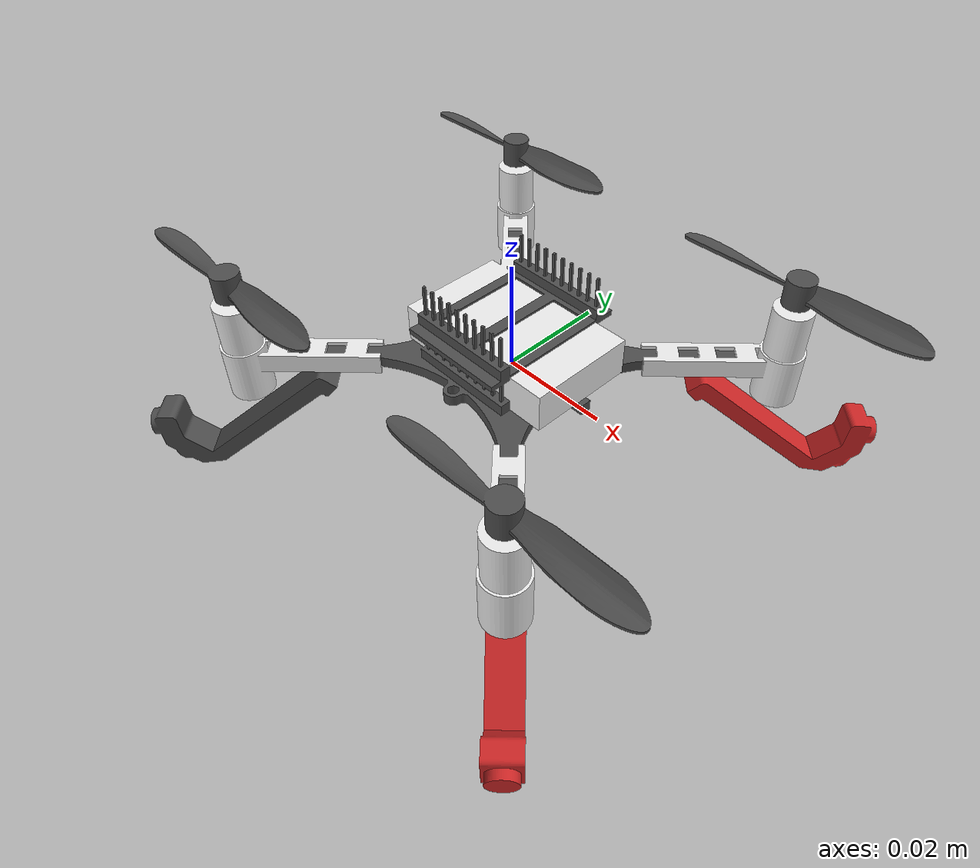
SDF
<?xml version='1.0'?>
<sdf version='1.7'>
  <model name='A50_L80'>

    <include>
      <uri>model://SAR_Base</uri>
    </include>

    <link name='Leg_1'>
      <pose>23.8e-3 -23.8e-3 -1.6e-3 0 0.698132 -0.785</pose>
      <inertial>
        <mass>3.66E-3</mass>
        <pose>5.83E-2 0 2.10E-4 0 0 0 </pose>
        <inertia>
          <ixx>4.44E-8</ixx>
          <ixy>0</ixy>
          <ixz>2.09E-7</ixz>
          <iyy>3.64E-6</iyy>
          <iyz>0</iyz>
          <izz>3.61E-6</izz>
        </inertia>
      </inertial>
      <gravity>1</gravity>
      <self_collide>1</self_collide>
      <visual name='Leg_Visual'>
        <pose>0 0 0 0 0 0</pose>
        <geometry>
          <mesh>
            <uri>model://Leg_Assemblies/meshes/Leg_Assembly_50_deg--80mm--Crazyflie.STL</uri>
            <scale>1 1 1</scale>
          </mesh>
        </geometry>
        <material>
          <script>
            <name>Gazebo/Red </name>
            <uri>file://media/materials/scripts/gazebo.material</uri>
          </script>
          <lighting>1</lighting>
        </material>
      </visual>
      <collision name="Leg_Collision_1">
        <pose>83.6e-3 0 4.3e-3 0 0 0</pose>
        <geometry>
          <sphere>
            <radius>6.5e-3</radius>
          </sphere>
        </geometry>
      </collision>
      <sensor name="Contact_Sensor" type="contact">
        <update_rate>100.0</update_rate>
        <contact>
          <collision>Leg_Collision_1</collision>
        </contact>
      </sensor>
      <self_collide>1</self_collide>
    </link>

    <link name='Leg_2'>
      <pose>-23.8e-3 -23.8e-3 -1.6e-3 0 0.698132 -2.35</pose>
      <inertial>
        <mass>3.66E-3</mass>
        <pose>5.83E-2 0 2.10E-4 0 0 0 </pose>
        <inertia>
          <ixx>4.44E-8</ixx>
          <ixy>0</ixy>
          <ixz>2.09E-7</ixz>
          <iyy>3.64E-6</iyy>
          <iyz>0</iyz>
          <izz>3.61E-6</izz>
        </inertia>
      </inertial>
      <gravity>1</gravity>
      <self_collide>1</self_collide>
      <visual name='Leg_Visual'>
        <pose>0 0 0 0 0 0</pose>
        <geometry>
          <mesh>
            <uri>model://Leg_Assemblies/meshes/Leg_Assembly_50_deg--80mm--Crazyflie.STL</uri>
            <scale>1 1 1</scale>
          </mesh>
        </geometry>
        <material>
          <script>
            <name>Gazebo/DarkGrey </name>
            <uri>file://media/materials/scripts/gazebo.material</uri>
          </script>
          <lighting>1</lighting>
        </material>
      </visual>
      <collision name="Leg_Collision_2">
        <pose>83.6e-3 0 4.3e-3 0 0 0</pose>
        <geometry>
          <sphere>
            <radius>6.5e-3</radius>
          </sphere>
        </geometry>
      </collision>
      <sensor name="Contact_Sensor" type="contact">
        <update_rate>100.0</update_rate>
        <contact>
          <collision>Leg_Collision_2</collision>
        </contact>
      </sensor>
      <self_collide>1</self_collide>
    </link>

    <link name='Leg_3'>
      <pose>-23.8e-3 23.8e-3 -1.6e-3 0 0.698132 2.35</pose>
      <inertial>
        <mass>3.66E-3</mass>
        <pose>5.83E-2 0 2.10E-4 0 0 0 </pose>
        <inertia>
          <ixx>4.44E-8</ixx>
          <ixy>0</ixy>
          <ixz>2.09E-7</ixz>
          <iyy>3.64E-6</iyy>
          <iyz>0</iyz>
          <izz>3.61E-6</izz>
        </inertia>
      </inertial>
      <gravity>1</gravity>
      <self_collide>1</self_collide>
      <visual name='Leg_Visual'>
        <pose>0 0 0 0 0 0</pose>
        <geometry>
          <mesh>
            <uri>model://Leg_Assemblies/meshes/Leg_Assembly_50_deg--80mm--Crazyflie.STL</uri>
            <scale>1 1 1</scale>
          </mesh>
        </geometry>
        <material>
          <script>
            <name>Gazebo/DarkGrey </name>
            <uri>file://media/materials/scripts/gazebo.material</uri>
          </script>
          <lighting>1</lighting>
        </material>
      </visual>
      <collision name="Leg_Collision_3">
        <pose>83.6e-3 0 4.3e-3 0 0 0</pose>
        <geometry>
          <sphere>
            <radius>6.5e-3</radius>
          </sphere>
        </geometry>
      </collision>
      <sensor name="Contact_Sensor" type="contact">
        <update_rate>100.0</update_rate>
        <contact>
          <collision>Leg_Collision_3</collision>
        </contact>
      </sensor>
      <self_collide>1</self_collide>
    </link>

    <link name='Leg_4'>
      <pose>23.8e-3 23.8e-3 -1.6e-3 0 0.698132 0.785</pose>
      <inertial>
        <mass>3.66E-3</mass>
        <pose>5.83E-2 0 2.10E-4 0 0 0 </pose>
        <inertia>
          <ixx>4.44E-8</ixx>
          <ixy>0</ixy>
          <ixz>2.09E-7</ixz>
          <iyy>3.64E-6</iyy>
          <iyz>0</iyz>
          <izz>3.61E-6</izz>
        </inertia>
      </inertial>
      <gravity>1</gravity>
      <self_collide>1</self_collide>
      <visual name='Leg_Visual'>
        <pose>0 0 0 0 0 0</pose>
        <geometry>
          <mesh>
            <uri>model://Leg_Assemblies/meshes/Leg_Assembly_50_deg--80mm--Crazyflie.STL</uri>
            <scale>1 1 1</scale>
          </mesh>
        </geometry>
        <material>
          <script>
            <name>Gazebo/Red </name>
            <uri>file://media/materials/scripts/gazebo.material</uri>
          </script>
          <lighting>1</lighting>
        </material>
      </visual>
      <collision name="Leg_Collision_4">
        <pose>83.6e-3 0 4.3e-3 0 0 0</pose>
        <geometry>
          <sphere>
            <radius>6.5e-3</radius>
          </sphere>
        </geometry>
      </collision>
      <sensor name="Contact_Sensor" type="contact">
        <update_rate>100.0</update_rate>
        <contact>
          <collision>Leg_Collision_4</collision>
        </contact>
      </sensor>
      <self_collide>1</self_collide>
    </link>

    <joint name='Hinge_1_Joint' type='universal'>
      <parent>SAR_Base::SAR_Body</parent>
      <child>Leg_1</child>
      <pose>0 0 0 0 0.8727 0</pose>
      <axis>
        <xyz>0 1 0</xyz>
        <limit>
          <lower>-5</lower>
          <upper>5</upper>
        </limit>
        <dynamics>
          <spring_stiffness>0</spring_stiffness>
          <damping>0</damping>
        </dynamics>
      </axis>
      <axis2>
        <xyz>0 0 1</xyz>
        <limit>
          <lower>-5</lower>
          <upper>5</upper>
        </limit>
        <dynamics>
          <spring_stiffness>0</spring_stiffness>
          <damping>0</damping>
        </dynamics>
      </axis2>
    </joint>

    <joint name='Hinge_2_Joint' type='universal'>
      <parent>SAR_Base::SAR_Body</parent>
      <child>Leg_2</child>
      <pose>0 0 0 0 0.8727 0</pose>
      <axis>
        <xyz>0 1 0</xyz>
        <limit>
          <lower>-5</lower>
          <upper>5</upper>
        </limit>
        <dynamics>
          <spring_stiffness>0</spring_stiffness>
          <damping>0</damping>
        </dynamics>
      </axis>
      <axis2>
        <xyz>0 0 1</xyz>
        <limit>
          <lower>-5</lower>
          <upper>5</upper>
        </limit>
        <dynamics>
          <spring_stiffness>0</spring_stiffness>
          <damping>0</damping>
        </dynamics>
      </axis2>
    </joint>

    <joint name='Hinge_3_Joint' type='universal'>
      <parent>SAR_Base::SAR_Body</parent>
      <child>Leg_3</child>
      <pose>0 0 0 0 0.8727 0</pose>
      <axis>
        <xyz>0 1 0</xyz>
        <limit>
          <lower>-5</lower>
          <upper>5</upper>
        </limit>
        <dynamics>
          <spring_stiffness>0</spring_stiffness>
          <damping>0</damping>
        </dynamics>
      </axis>
      <axis2>
        <xyz>0 0 1</xyz>
        <limit>
          <lower>-5</lower>
          <upper>5</upper>
        </limit>
        <dynamics>
          <spring_stiffness>0</spring_stiffness>
          <damping>0</damping>
        </dynamics>
      </axis2>
    </joint>

    <joint name='Hinge_4_Joint' type='universal'>
      <parent>SAR_Base::SAR_Body</parent>
      <child>Leg_4</child>
      <pose>0 0 0 0 0.8727 0</pose>
      <axis>
        <xyz>0 1 0</xyz>
        <limit>
          <lower>-5</lower>
          <upper>5</upper>
        </limit>
        <dynamics>
          <spring_stiffness>0</spring_stiffness>
          <damping>0</damping>
        </dynamics>
      </axis>
      <axis2>
        <xyz>0 0 1</xyz>
        <limit>
          <lower>-5</lower>
          <upper>5</upper>
        </limit>
        <dynamics>
          <spring_stiffness>0</spring_stiffness>
          <damping>0</damping>
        </dynamics>
      </axis2>
    </joint>

    <plugin name='Leg_1_Plugin' filename='libSticky_Leg_Plugin.so'>
      <LegNumber>1</LegNumber>
      <LinkName>Leg_1</LinkName>
      <CollisionName>Leg_Collision_1</CollisionName>
      <JointName>Leg_1_Contact_Joint</JointName>
    </plugin>

    <plugin name='Leg_2_Plugin' filename='libSticky_Leg_Plugin.so'>
      <LegNumber>2</LegNumber>
      <LinkName>Leg_2</LinkName>
      <CollisionName>Leg_Collision_2</CollisionName>
      <JointName>Leg_2_Contact_Joint</JointName>
    </plugin>

    <plugin name='Leg_3_Plugin' filename='libSticky_Leg_Plugin.so'>
      <LegNumber>3</LegNumber>
      <LinkName>Leg_3</LinkName>
      <CollisionName>Leg_Collision_3</CollisionName>
      <JointName>Leg_3_Contact_Joint</JointName>
    </plugin>

    <plugin name='Leg_4_Plugin' filename='libSticky_Leg_Plugin.so'>
      <LegNumber>4</LegNumber>
      <LinkName>Leg_4</LinkName>
      <CollisionName>Leg_Collision_4</CollisionName>
      <JointName>Leg_4_Contact_Joint</JointName>
    </plugin>

    <static>0</static>
    <allow_auto_disable>1</allow_auto_disable>
  </model>
</sdf>

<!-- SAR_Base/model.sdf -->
<sdf version='1.7'>
  <model name='SAR_Base'>
    <link name='SAR_Body'>
      <pose>0 0 0 0 0 0</pose>
      <inertial>
        <mass>37.0e-3</mass>
        <inertia>
          <ixx>17.20e-6</ixx>
          <ixy>0</ixy>
          <ixz>0</ixz>
          <iyy>17.70e-6</iyy>
          <iyz>0</iyz>
          <izz>34.20e-6</izz>
        </inertia>
        <pose>0 0 4.1e-3 0 0 0</pose>
      </inertial>
      <gravity>1</gravity>
      <self_collide>0</self_collide>
      <kinematic>0</kinematic>
      <enable_wind>0</enable_wind>

      <visual name='Crazyflie_Base_Assembly'>
        <pose>0 0 0 0 0 0</pose>
        <geometry>
          <mesh>
            <uri>model://SAR_Base/meshes/Crazyflie_Base_Body.STL</uri>
            <scale>1 1 1</scale>
          </mesh>
        </geometry>
        <material>
          <script>
            <name>Gazebo/DarkGrey</name>
            <uri>file://media/materials/scripts/gazebo.material</uri>
          </script>
          <lighting>1</lighting>
        </material>
      </visual>

      <visual name='Crazyflie_Motor_Arms'>
        <pose>0 0 0 0 0 0</pose>
        <geometry>
          <mesh>
            <uri>model://SAR_Base/meshes/Crazyflie_Motor_Arms.STL</uri>
            <scale>1 1 1</scale>
          </mesh>
        </geometry>
        <material>
          <script>
            <name>Gazebo/White</name>
            <uri>file://media/materials/scripts/gazebo.material</uri>
          </script>
          <lighting>1</lighting>
        </material>
      </visual>

      <collision name='Body_Collision_Prop_1'>
        <pose>33.0e-3 -33.0e-3 9.25e-3 0 0 0</pose>
        <geometry>
          <cylinder>
            <length>18.5e-3</length>
            <radius>23.0e-3</radius>
          </cylinder>
        </geometry>
      </collision>

      <collision name='Body_Collision_Prop_2'>
        <pose>-33.0e-3 -33.0e-3 9.25e-3 0 0 0</pose>
        <geometry>
          <cylinder>
            <length>18.5e-3</length>
            <radius>23.0e-3</radius>
          </cylinder>
        </geometry>
      </collision>

      <collision name='Body_Collision_Prop_3'>
        <pose>-33.0e-3 33.0e-3 9.25e-3 0 0 0</pose>
        <geometry>
          <cylinder>
            <length>18.5e-3</length>
            <radius>23.0e-3</radius>
          </cylinder>
        </geometry>
      </collision>

      <collision name='Body_Collision_Prop_4'>
        <pose>33.0e-3 33.0e-3 9.25e-3 0 0 0</pose>
        <geometry>
          <cylinder>
            <length>18.5e-3</length>
            <radius>23.0e-3</radius>
          </cylinder>
        </geometry>
      </collision>

    </link>

    <link name='Prop_1'>
      <inertial>
        <mass>1e-6</mass>
        <inertia>
          <ixx>1e-6</ixx>
          <ixy>0</ixy>
          <ixz>0</ixz>
          <iyy>1e-6</iyy>
          <iyz>0</iyz>
          <izz>1e-6</izz>
        </inertia>
        <pose>0 0 0 0 0 0</pose>
      </inertial>
      <pose>33.0e-3 -33.0e-3 16.0e-3 0 0 0</pose>
      <gravity>1</gravity>
      <self_collide>0</self_collide>
      <visual name='Crazyflie_Propeller_1'>
        <pose>0 0 0 0 0 0</pose>
        <geometry>
          <mesh>
            <uri>model://SAR_Base/meshes/Crazyflie_Propeller.STL</uri>
            <scale>1 1 1</scale>
          </mesh>
        </geometry>
        <material>
          <script>
            <uri>file://media/materials/scripts/gazebo.material</uri>
            <name>Gazebo/DarkGrey </name>
          </script>
        </material>
      </visual>
    </link>

    <link name='Prop_2'>
      <inertial>
        <mass>1e-6</mass>
        <inertia>
          <ixx>1e-6</ixx>
          <ixy>0</ixy>
          <ixz>0</ixz>
          <iyy>1e-6</iyy>
          <iyz>0</iyz>
          <izz>1e-6</izz>
        </inertia>
        <pose>0 0 0 0 0 0</pose>
      </inertial>
      <pose>-33.0e-3 -33.0e-3 16.0e-3 0 0 0</pose>
      <gravity>1</gravity>
      <self_collide>0</self_collide>
      <visual name='Crazyflie_Propeller_2'>
        <pose>0 0 0 0 0 0</pose>
        <geometry>
          <mesh>
            <uri>model://SAR_Base/meshes/Crazyflie_Propeller.STL</uri>
            <scale>1 1 1</scale>
          </mesh>
        </geometry>
        <material>
          <script>
            <uri>file://media/materials/scripts/gazebo.material</uri>
            <name>Gazebo/DarkGrey </name>
          </script>
        </material>
      </visual>
    </link>

    <link name='Prop_3'>
      <inertial>
        <mass>1e-6</mass>
        <inertia>
          <ixx>1e-6</ixx>
          <ixy>0</ixy>
          <ixz>0</ixz>
          <iyy>1e-6</iyy>
          <iyz>0</iyz>
          <izz>1e-6</izz>
        </inertia>
        <pose>0 0 0 0 0 0</pose>
      </inertial>
      <pose>-33.0e-3 33.0e-3 16.0e-3 0 0 0</pose>
      <gravity>1</gravity>
      <self_collide>0</self_collide>
      <visual name='Crazyflie_Propeller_3'>
        <pose>0 0 0 0 0 0</pose>
        <geometry>
          <mesh>
            <uri>model://SAR_Base/meshes/Crazyflie_Propeller.STL</uri>
            <scale>1 1 1</scale>
          </mesh>
        </geometry>
        <material>
          <script>
            <uri>file://media/materials/scripts/gazebo.material</uri>
            <name>Gazebo/DarkGrey </name>
          </script>
        </material>
      </visual>
    </link>

    <link name='Prop_4'>
      <inertial>
        <mass>1e-6</mass>
        <inertia>
          <ixx>1e-6</ixx>
          <ixy>0</ixy>
          <ixz>0</ixz>
          <iyy>1e-6</iyy>
          <iyz>0</iyz>
          <izz>1e-6</izz>
        </inertia>
        <pose>0 0 0 0 0 0</pose>
      </inertial>
      <pose>33.0e-3 33.0e-3 16.0e-3 0 0 0</pose>
      <gravity>1</gravity>
      <self_collide>0</self_collide>
      <visual name='Crazyflie_Propeller_4'>
        <pose>0 0 0 0 0 0</pose>
        <geometry>
          <mesh>
            <uri>model://SAR_Base/meshes/Crazyflie_Propeller.STL</uri>
            <scale>1 1 1</scale>
          </mesh>
        </geometry>
        <material>
          <script>
            <uri>file://media/materials/scripts/gazebo.material</uri>
            <name>Gazebo/DarkGrey </name>
          </script>
        </material>
      </visual>
    </link>

    <link name='Camera'>
      <inertial>
        <mass>1e-6</mass>
        <inertia>
          <ixx>1e-6</ixx>
          <ixy>0</ixy>
          <ixz>0</ixz>
          <iyy>1e-6</iyy>
          <iyz>0</iyz>
          <izz>1e-6</izz>
        </inertia>
        <pose>0 0 0 0 0 0</pose>
      </inertial>

      <sensor type="camera" name="Camera">
        <pose>0 0 0 0 0 0</pose>
        <update_rate>100</update_rate>        <!--Changed to a nice number for FPS because message didn't contain enough precision -->
        <visualize>false</visualize>
        <camera name="head">
          <save enabled="false">
            <path>/home/bhabas/Downloads/Video_images</path>
            <!--Convert Command: ffmpeg -framerate 60 -pattern_type glob -i '*.jpg' -c:v libx264 -pix_fmt yuv420p out.mp4 -->
          </save>
          <horizontal_fov>1.435</horizontal_fov>          <!-- 82.22 deg FoV to match AI Deck -->
          <image>
            <width>64</width>
            <height>64</height>
            <format>L8</format>
          </image>
          <clip>
            <near>0.02</near>
            <far>300</far>
          </clip>
          <noise>
            <type>gaussian</type>
            <!-- Noise is sampled independently per pixel on each frame.
                 That pixel's noise value is added to each of its color
                 channels, which at that point lie in the range [0,1]. -->
            <mean>0.0</mean>
            <stddev>0.000</stddev>
          </noise>
          <lens>
            <type>sterographic</type>
          </lens>
        </camera>
        <plugin name="camera_controller" filename="libgazebo_ros_camera.so">
          <alwaysOn>true</alwaysOn>
          <updateRate>0.0</updateRate>
          <cameraName>SAR_Internal/camera</cameraName>
          <imageTopicName>image_raw</imageTopicName>
          <cameraInfoTopicName>camera_info</cameraInfoTopicName>
          <frameName>camera_sensor</frameName>
          <hackBaseline>0.0</hackBaseline>
          <distortionK1>0.0</distortionK1>
          <distortionK2>0.0</distortionK2>
          <distortionK3>0.0</distortionK3>
          <distortionT1>0.0</distortionT1>
          <distortionT2>0.0</distortionT2>
        </plugin>
      </sensor>

      <visual name='camera_center'>
        <cast_shadows>0</cast_shadows>
        <pose>0 0 0 0 0 0</pose>
        <geometry>
          <sphere>
            <radius>0.002</radius>
          </sphere>
        </geometry>
        <material>
          <script>
            <name>Gazebo/Blue</name>
            <uri>file://media/materials/scripts/gazebo.material</uri>
          </script>
          <shader type='pixel'>
            <normal_map>__default__</normal_map>
          </shader>
        </material>
      </visual>
    </link>

    <joint name='Prop_1_Joint' type='revolute'>
      <parent>SAR_Body</parent>
      <child>Prop_1</child>
      <pose>0 0 0 0 0 0</pose>
      <axis>
        <xyz>0 0 1</xyz>
        <limit>
          <lower>-1.79769e+308</lower>
          <upper>1.79769e+308</upper>
          <effort>-1</effort>
          <velocity>-1</velocity>
        </limit>
        <dynamics>
          <spring_reference>0</spring_reference>
          <spring_stiffness>0</spring_stiffness>
        </dynamics>
      </axis>
    </joint>

    <joint name='Prop_2_Joint' type='revolute'>
      <parent>SAR_Body</parent>
      <child>Prop_2</child>
      <pose>0 0 0 0 0 0</pose>
      <axis>
        <xyz>0 0 1</xyz>
        <limit>
          <lower>-1.79769e+308</lower>
          <upper>1.79769e+308</upper>
          <effort>-1</effort>
          <velocity>-1</velocity>
        </limit>
        <dynamics>
          <spring_reference>0</spring_reference>
          <spring_stiffness>0</spring_stiffness>
        </dynamics>
      </axis>
    </joint>

    <joint name='Prop_3_Joint' type='revolute'>
      <parent>SAR_Body</parent>
      <child>Prop_3</child>
      <pose>0 0 0 0 0 0</pose>
      <axis>
        <xyz>0 0 1</xyz>
        <limit>
          <lower>-1.79769e+308</lower>
          <upper>1.79769e+308</upper>
          <effort>-1</effort>
          <velocity>-1</velocity>
        </limit>
        <dynamics>
          <spring_reference>0</spring_reference>
          <spring_stiffness>0</spring_stiffness>
        </dynamics>
      </axis>
    </joint>

    <joint name='Prop_4_Joint' type='revolute'>
      <parent>SAR_Body</parent>
      <child>Prop_4</child>
      <pose>0 0 0 0 0 0</pose>
      <axis>
        <xyz>0 0 1</xyz>
        <limit>
          <lower>-1.79769e+308</lower>
          <upper>1.79769e+308</upper>
          <effort>-1</effort>
          <velocity>-1</velocity>
        </limit>
        <dynamics>
          <spring_reference>0</spring_reference>
          <spring_stiffness>0</spring_stiffness>
        </dynamics>
      </axis>
    </joint>

    <joint name='Camera_Joint' type='fixed'>
      <parent>SAR_Body</parent>
      <child>Camera</child>
    </joint>

    <plugin name='Motor_1_Plugin' filename='libMotor_Plugin.so'>
      <Motor_Number>1</Motor_Number>
      <Joint_Name>Prop_1_Joint</Joint_Name>
      <Link_Name>Prop_1</Link_Name>
      <Turning_Direction>ccw</Turning_Direction>
      <Visual_Slowdown>200</Visual_Slowdown>
    </plugin>

    <plugin name='Motor_2_Plugin' filename='libMotor_Plugin.so'>
      <Motor_Number>2</Motor_Number>
      <Joint_Name>Prop_2_Joint</Joint_Name>
      <Link_Name>Prop_2</Link_Name>
      <Turning_Direction>cw</Turning_Direction>
      <Visual_Slowdown>200</Visual_Slowdown>
    </plugin>

    <plugin name='Motor_3_Plugin' filename='libMotor_Plugin.so'>
      <Motor_Number>3</Motor_Number>
      <Joint_Name>Prop_3_Joint</Joint_Name>
      <Link_Name>Prop_3</Link_Name>
      <Turning_Direction>ccw</Turning_Direction>
      <Visual_Slowdown>200</Visual_Slowdown>
    </plugin>

    <plugin name='Motor_4_Plugin' filename='libMotor_Plugin.so'>
      <Motor_Number>4</Motor_Number>
      <Joint_Name>Prop_4_Joint</Joint_Name>
      <Link_Name>Prop_4</Link_Name>
      <Turning_Direction>cw</Turning_Direction>
      <Visual_Slowdown>200</Visual_Slowdown>
    </plugin>

    <plugin name='SAR_Update_Plugin' filename='libSAR_Update_Plugin.so'>
      <CameraJointName>Camera_Joint</CameraJointName>
    </plugin>

    <plugin name='Vicon_plugin' filename='libgazebo_ros_p3d.so'>
      <alwaysOn>true</alwaysOn>
      <updateRate>1000</updateRate>
      <bodyName>SAR_Body</bodyName>
      <topicName>SAR_External/ExtPosition</topicName>
      <frameName>world</frameName>
      <xyzOffsets>0 0 0</xyzOffsets>
      <rpyOffsets>0 0 0</rpyOffsets>
      <robotNamespace>/</robotNamespace>
    </plugin>

    <plugin name="IMU_plugin" filename="libgazebo_ros_imu.so">
      <alwaysOn>true</alwaysOn>
      <updateRate>1000</updateRate>
      <bodyName>SAR_Body</bodyName>
      <topicName>SAR_Internal/IMU</topicName>
      <serviceName>imu_service</serviceName>
      <frameName>SAR_Body</frameName>
    </plugin>

    <static>0</static>
    <allow_auto_disable>1</allow_auto_disable>
  </model>
</sdf>
